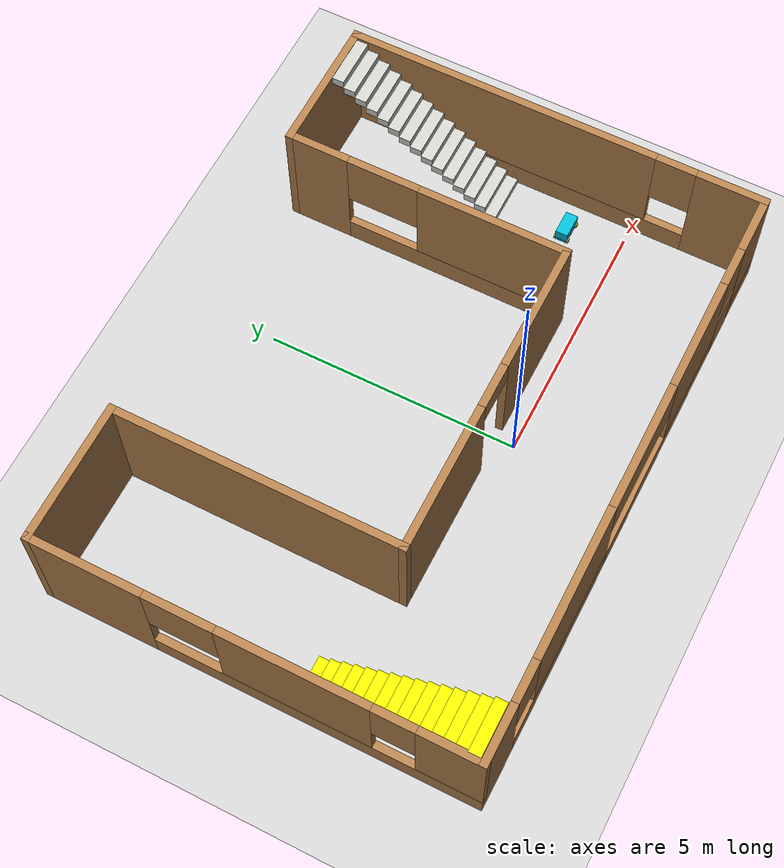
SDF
<sdf version="1.6">
 <world name="default">
  <model name="ground_plane">
   <static>1</static>
   <link name="link">
    <collision name="collision">
     <geometry><plane><normal>0 0 1</normal><size>100 100</size></plane></geometry>
     <surface><friction><ode><mu>100</mu><mu2>50</mu2></ode></friction></surface>
    </collision>
    <visual name="visual">
     <cast_shadows>0</cast_shadows>
     <geometry><plane><normal>0 0 1</normal><size>100 100</size></plane></geometry>
     <material>
      <script><uri>file://media/materials/scripts/gazebo.material</uri><name>Gazebo/Grey</name></script>
     </material>
    </visual>
   </link>
  </model>
  <model name="building0">
   <pose>-0.424502 1.82994 0 0 -0 0</pose>
   <link name="Stairs_0">
    <visual name="Stairs_0_Visual_0">
     <pose>5.18201 0.711332 0.083333 0 -0 -3.14159</pose>
     <geometry><box><size>1 0.233333 0.166667</size></box></geometry>
     <material>
      <script><uri>file://media/materials/scripts/gazebo.material</uri><name>Gazebo/CeilingTiled</name></script>
      <ambient>1 0 1 1</ambient>
     </material>
     <meta><layer>0</layer></meta>
    </visual>
    <collision name="Stairs_0_Collision_0">
     <geometry><box><size>1 0.233333 0.166667</size></box></geometry>
     <pose>5.18201 0.711332 0.083333 0 -0 -3.14159</pose>
    </collision>
    <visual name="Stairs_0_Visual_1">
     <pose>5.18201 0.944665 0.25 0 -0 -3.14159</pose>
     <geometry><box><size>1 0.233333 0.166667</size></box></geometry>
     <material>
      <script><uri>file://media/materials/scripts/gazebo.material</uri><name>Gazebo/CeilingTiled</name></script>
      <ambient>1 0 1 1</ambient>
     </material>
     <meta><layer>0</layer></meta>
    </visual>
    <collision name="Stairs_0_Collision_1">
     <geometry><box><size>1 0.233333 0.166667</size></box></geometry>
     <pose>5.18201 0.944665 0.25 0 -0 -3.14159</pose>
    </collision>
    <visual name="Stairs_0_Visual_2">
     <pose>5.18201 1.178 0.416667 0 -0 -3.14159</pose>
     <geometry><box><size>1 0.233333 0.166667</size></box></geometry>
     <material>
      <script><uri>file://media/materials/scripts/gazebo.material</uri><name>Gazebo/CeilingTiled</name></script>
      <ambient>1 0 1 1</ambient>
     </material>
     <meta><layer>0</layer></meta>
    </visual>
    <collision name="Stairs_0_Collision_2">
     <geometry><box><size>1 0.233333 0.166667</size></box></geometry>
     <pose>5.18201 1.178 0.416667 0 -0 -3.14159</pose>
    </collision>
    <visual name="Stairs_0_Visual_3">
     <pose>5.18201 1.41133 0.583333 0 -0 -3.14159</pose>
     <geometry><box><size>1 0.233333 0.166667</size></box></geometry>
     <material>
      <script><uri>file://media/materials/scripts/gazebo.material</uri><name>Gazebo/CeilingTiled</name></script>
      <ambient>1 0 1 1</ambient>
     </material>
     <meta><layer>0</layer></meta>
    </visual>
    <collision name="Stairs_0_Collision_3">
     <geometry><box><size>1 0.233333 0.166667</size></box></geometry>
     <pose>5.18201 1.41133 0.583333 0 -0 -3.14159</pose>
    </collision>
    <visual name="Stairs_0_Visual_4">
     <pose>5.18201 1.64467 0.75 0 -0 -3.14159</pose>
     <geometry><box><size>1 0.233333 0.166667</size></box></geometry>
     <material>
      <script><uri>file://media/materials/scripts/gazebo.material</uri><name>Gazebo/CeilingTiled</name></script>
      <ambient>1 0 1 1</ambient>
     </material>
     <meta><layer>0</layer></meta>
    </visual>
    <collision name="Stairs_0_Collision_4">
     <geometry><box><size>1 0.233333 0.166667</size></box></geometry>
     <pose>5.18201 1.64467 0.75 0 -0 -3.14159</pose>
    </collision>
    <visual name="Stairs_0_Visual_5">
     <pose>5.18201 1.878 0.916667 0 -0 -3.14159</pose>
     <geometry><box><size>1 0.233333 0.166667</size></box></geometry>
     <material>
      <script><uri>file://media/materials/scripts/gazebo.material</uri><name>Gazebo/CeilingTiled</name></script>
      <ambient>1 0 1 1</ambient>
     </material>
     <meta><layer>0</layer></meta>
    </visual>
    <collision name="Stairs_0_Collision_5">
     <geometry><box><size>1 0.233333 0.166667</size></box></geometry>
     <pose>5.18201 1.878 0.916667 0 -0 -3.14159</pose>
    </collision>
    <visual name="Stairs_0_Visual_6">
     <pose>5.18201 2.11133 1.08333 0 -0 -3.14159</pose>
     <geometry><box><size>1 0.233333 0.166667</size></box></geometry>
     <material>
      <script><uri>file://media/materials/scripts/gazebo.material</uri><name>Gazebo/CeilingTiled</name></script>
      <ambient>1 0 1 1</ambient>
     </material>
     <meta><layer>0</layer></meta>
    </visual>
    <collision name="Stairs_0_Collision_6">
     <geometry><box><size>1 0.233333 0.166667</size></box></geometry>
     <pose>5.18201 2.11133 1.08333 0 -0 -3.14159</pose>
    </collision>
    <visual name="Stairs_0_Visual_7">
     <pose>5.18201 2.34466 1.25 0 -0 -3.14159</pose>
     <geometry><box><size>1 0.233333 0.166667</size></box></geometry>
     <material>
      <script><uri>file://media/materials/scripts/gazebo.material</uri><name>Gazebo/CeilingTiled</name></script>
      <ambient>1 0 1 1</ambient>
     </material>
     <meta><layer>0</layer></meta>
    </visual>
    <collision name="Stairs_0_Collision_7">
     <geometry><box><size>1 0.233333 0.166667</size></box></geometry>
     <pose>5.18201 2.34466 1.25 0 -0 -3.14159</pose>
    </collision>
    <visual name="Stairs_0_Visual_8">
     <pose>5.18201 2.578 1.41667 0 -0 -3.14159</pose>
     <geometry><box><size>1 0.233333 0.166667</size></box></geometry>
     <material>
      <script><uri>file://media/materials/scripts/gazebo.material</uri><name>Gazebo/CeilingTiled</name></script>
      <ambient>1 0 1 1</ambient>
     </material>
     <meta><layer>0</layer></meta>
    </visual>
    <collision name="Stairs_0_Collision_8">
     <geometry><box><size>1 0.233333 0.166667</size></box></geometry>
     <pose>5.18201 2.578 1.41667 0 -0 -3.14159</pose>
    </collision>
    <visual name="Stairs_0_Visual_9">
     <pose>5.18201 2.81133 1.58333 0 -0 -3.14159</pose>
     <geometry><box><size>1 0.233333 0.166667</size></box></geometry>
     <material>
      <script><uri>file://media/materials/scripts/gazebo.material</uri><name>Gazebo/CeilingTiled</name></script>
      <ambient>1 0 1 1</ambient>
     </material>
     <meta><layer>0</layer></meta>
    </visual>
    <collision name="Stairs_0_Collision_9">
     <geometry><box><size>1 0.233333 0.166667</size></box></geometry>
     <pose>5.18201 2.81133 1.58333 0 -0 -3.14159</pose>
    </collision>
    <visual name="Stairs_0_Visual_10">
     <pose>5.18201 3.04467 1.75 0 -0 -3.14159</pose>
     <geometry><box><size>1 0.233333 0.166667</size></box></geometry>
     <material>
      <script><uri>file://media/materials/scripts/gazebo.material</uri><name>Gazebo/CeilingTiled</name></script>
      <ambient>1 0 1 1</ambient>
     </material>
     <meta><layer>0</layer></meta>
    </visual>
    <collision name="Stairs_0_Collision_10">
     <geometry><box><size>1 0.233333 0.166667</size></box></geometry>
     <pose>5.18201 3.04467 1.75 0 -0 -3.14159</pose>
    </collision>
    <visual name="Stairs_0_Visual_11">
     <pose>5.18201 3.278 1.91667 0 -0 -3.14159</pose>
     <geometry><box><size>1 0.233333 0.166667</size></box></geometry>
     <material>
      <script><uri>file://media/materials/scripts/gazebo.material</uri><name>Gazebo/CeilingTiled</name></script>
      <ambient>1 0 1 1</ambient>
     </material>
     <meta><layer>0</layer></meta>
    </visual>
    <collision name="Stairs_0_Collision_11">
     <geometry><box><size>1 0.233333 0.166667</size></box></geometry>
     <pose>5.18201 3.278 1.91667 0 -0 -3.14159</pose>
    </collision>
    <visual name="Stairs_0_Visual_12">
     <pose>5.18201 3.51133 2.08333 0 -0 -3.14159</pose>
     <geometry><box><size>1 0.233333 0.166667</size></box></geometry>
     <material>
      <script><uri>file://media/materials/scripts/gazebo.material</uri><name>Gazebo/CeilingTiled</name></script>
      <ambient>1 0 1 1</ambient>
     </material>
     <meta><layer>0</layer></meta>
    </visual>
    <collision name="Stairs_0_Collision_12">
     <geometry><box><size>1 0.233333 0.166667</size></box></geometry>
     <pose>5.18201 3.51133 2.08333 0 -0 -3.14159</pose>
    </collision>
    <visual name="Stairs_0_Visual_13">
     <pose>5.18201 3.74466 2.25 0 -0 -3.14159</pose>
     <geometry><box><size>1 0.233333 0.166667</size></box></geometry>
     <material>
      <script><uri>file://media/materials/scripts/gazebo.material</uri><name>Gazebo/CeilingTiled</name></script>
      <ambient>1 0 1 1</ambient>
     </material>
     <meta><layer>0</layer></meta>
    </visual>
    <collision name="Stairs_0_Collision_13">
     <geometry><box><size>1 0.233333 0.166667</size></box></geometry>
     <pose>5.18201 3.74466 2.25 0 -0 -3.14159</pose>
    </collision>
    <visual name="Stairs_0_Visual_14">
     <pose>5.18201 3.978 2.41667 0 -0 -3.14159</pose>
     <geometry><box><size>1 0.233333 0.166667</size></box></geometry>
     <material>
      <script><uri>file://media/materials/scripts/gazebo.material</uri><name>Gazebo/CeilingTiled</name></script>
      <ambient>1 0 1 1</ambient>
     </material>
     <meta><layer>0</layer></meta>
    </visual>
    <collision name="Stairs_0_Collision_14">
     <geometry><box><size>1 0.233333 0.166667</size></box></geometry>
     <pose>5.18201 3.978 2.41667 0 -0 -3.14159</pose>
    </collision>
   </link>
   <link name="Stairs_1">
    <visual name="Stairs_1_Visual_0">
     <pose>-5.25693 -0.708464 0.083333 0 -0 0</pose>
     <geometry><box><size>1 0.233333 0.166667</size></box></geometry>
     <material>
      <script><uri>file://media/materials/scripts/gazebo.material</uri><name>Gazebo/Grey</name></script>
      <ambient>1 1 0 1</ambient>
     </material>
     <meta><layer>0</layer></meta>
    </visual>
    <collision name="Stairs_1_Collision_0">
     <geometry><box><size>1 0.233333 0.166667</size></box></geometry>
     <pose>-5.25693 -0.708464 0.083333 0 -0 0</pose>
    </collision>
    <visual name="Stairs_1_Visual_1">
     <pose>-5.25693 -0.941797 0.25 0 -0 0</pose>
     <geometry><box><size>1 0.233333 0.166667</size></box></geometry>
     <material>
      <script><uri>file://media/materials/scripts/gazebo.material</uri><name>Gazebo/Grey</name></script>
      <ambient>1 1 0 1</ambient>
     </material>
     <meta><layer>0</layer></meta>
    </visual>
    <collision name="Stairs_1_Collision_1">
     <geometry><box><size>1 0.233333 0.166667</size></box></geometry>
     <pose>-5.25693 -0.941797 0.25 0 -0 0</pose>
    </collision>
    <visual name="Stairs_1_Visual_2">
     <pose>-5.25693 -1.17513 0.416667 0 -0 0</pose>
     <geometry><box><size>1 0.233333 0.166667</size></box></geometry>
     <material>
      <script><uri>file://media/materials/scripts/gazebo.material</uri><name>Gazebo/Grey</name></script>
      <ambient>1 1 0 1</ambient>
     </material>
     <meta><layer>0</layer></meta>
    </visual>
    <collision name="Stairs_1_Collision_2">
     <geometry><box><size>1 0.233333 0.166667</size></box></geometry>
     <pose>-5.25693 -1.17513 0.416667 0 -0 0</pose>
    </collision>
    <visual name="Stairs_1_Visual_3">
     <pose>-5.25693 -1.40846 0.583333 0 -0 0</pose>
     <geometry><box><size>1 0.233333 0.166667</size></box></geometry>
     <material>
      <script><uri>file://media/materials/scripts/gazebo.material</uri><name>Gazebo/Grey</name></script>
      <ambient>1 1 0 1</ambient>
     </material>
     <meta><layer>0</layer></meta>
    </visual>
    <collision name="Stairs_1_Collision_3">
     <geometry><box><size>1 0.233333 0.166667</size></box></geometry>
     <pose>-5.25693 -1.40846 0.583333 0 -0 0</pose>
    </collision>
    <visual name="Stairs_1_Visual_4">
     <pose>-5.25693 -1.6418 0.75 0 -0 0</pose>
     <geometry><box><size>1 0.233333 0.166667</size></box></geometry>
     <material>
      <script><uri>file://media/materials/scripts/gazebo.material</uri><name>Gazebo/Grey</name></script>
      <ambient>1 1 0 1</ambient>
     </material>
     <meta><layer>0</layer></meta>
    </visual>
    <collision name="Stairs_1_Collision_4">
     <geometry><box><size>1 0.233333 0.166667</size></box></geometry>
     <pose>-5.25693 -1.6418 0.75 0 -0 0</pose>
    </collision>
    <visual name="Stairs_1_Visual_5">
     <pose>-5.25693 -1.87513 0.916667 0 -0 0</pose>
     <geometry><box><size>1 0.233333 0.166667</size></box></geometry>
     <material>
      <script><uri>file://media/materials/scripts/gazebo.material</uri><name>Gazebo/Grey</name></script>
      <ambient>1 1 0 1</ambient>
     </material>
     <meta><layer>0</layer></meta>
    </visual>
    <collision name="Stairs_1_Collision_5">
     <geometry><box><size>1 0.233333 0.166667</size></box></geometry>
     <pose>-5.25693 -1.87513 0.916667 0 -0 0</pose>
    </collision>
    <visual name="Stairs_1_Visual_6">
     <pose>-5.25693 -2.10846 1.08333 0 -0 0</pose>
     <geometry><box><size>1 0.233333 0.166667</size></box></geometry>
     <material>
      <script><uri>file://media/materials/scripts/gazebo.material</uri><name>Gazebo/Grey</name></script>
      <ambient>1 1 0 1</ambient>
     </material>
     <meta><layer>0</layer></meta>
    </visual>
    <collision name="Stairs_1_Collision_6">
     <geometry><box><size>1 0.233333 0.166667</size></box></geometry>
     <pose>-5.25693 -2.10846 1.08333 0 -0 0</pose>
    </collision>
    <visual name="Stairs_1_Visual_7">
     <pose>-5.25693 -2.3418 1.25 0 -0 0</pose>
     <geometry><box><size>1 0.233333 0.166667</size></box></geometry>
     <material>
      <script><uri>file://media/materials/scripts/gazebo.material</uri><name>Gazebo/Grey</name></script>
      <ambient>1 1 0 1</ambient>
     </material>
     <meta><layer>0</layer></meta>
    </visual>
    <collision name="Stairs_1_Collision_7">
     <geometry><box><size>1 0.233333 0.166667</size></box></geometry>
     <pose>-5.25693 -2.3418 1.25 0 -0 0</pose>
    </collision>
    <visual name="Stairs_1_Visual_8">
     <pose>-5.25693 -2.57513 1.41667 0 -0 0</pose>
     <geometry><box><size>1 0.233333 0.166667</size></box></geometry>
     <material>
      <script><uri>file://media/materials/scripts/gazebo.material</uri><name>Gazebo/Grey</name></script>
      <ambient>1 1 0 1</ambient>
     </material>
     <meta><layer>0</layer></meta>
    </visual>
    <collision name="Stairs_1_Collision_8">
     <geometry><box><size>1 0.233333 0.166667</size></box></geometry>
     <pose>-5.25693 -2.57513 1.41667 0 -0 0</pose>
    </collision>
    <visual name="Stairs_1_Visual_9">
     <pose>-5.25693 -2.80846 1.58333 0 -0 0</pose>
     <geometry><box><size>1 0.233333 0.166667</size></box></geometry>
     <material>
      <script><uri>file://media/materials/scripts/gazebo.material</uri><name>Gazebo/Grey</name></script>
      <ambient>1 1 0 1</ambient>
     </material>
     <meta><layer>0</layer></meta>
    </visual>
    <collision name="Stairs_1_Collision_9">
     <geometry><box><size>1 0.233333 0.166667</size></box></geometry>
     <pose>-5.25693 -2.80846 1.58333 0 -0 0</pose>
    </collision>
    <visual name="Stairs_1_Visual_10">
     <pose>-5.25693 -3.0418 1.75 0 -0 0</pose>
     <geometry><box><size>1 0.233333 0.166667</size></box></geometry>
     <material>
      <script><uri>file://media/materials/scripts/gazebo.material</uri><name>Gazebo/Grey</name></script>
      <ambient>1 1 0 1</ambient>
     </material>
     <meta><layer>0</layer></meta>
    </visual>
    <collision name="Stairs_1_Collision_10">
     <geometry><box><size>1 0.233333 0.166667</size></box></geometry>
     <pose>-5.25693 -3.0418 1.75 0 -0 0</pose>
    </collision>
    <visual name="Stairs_1_Visual_11">
     <pose>-5.25693 -3.27513 1.91667 0 -0 0</pose>
     <geometry><box><size>1 0.233333 0.166667</size></box></geometry>
     <material>
      <script><uri>file://media/materials/scripts/gazebo.material</uri><name>Gazebo/Grey</name></script>
      <ambient>1 1 0 1</ambient>
     </material>
     <meta><layer>0</layer></meta>
    </visual>
    <collision name="Stairs_1_Collision_11">
     <geometry><box><size>1 0.233333 0.166667</size></box></geometry>
     <pose>-5.25693 -3.27513 1.91667 0 -0 0</pose>
    </collision>
    <visual name="Stairs_1_Visual_12">
     <pose>-5.25693 -3.50846 2.08333 0 -0 0</pose>
     <geometry><box><size>1 0.233333 0.166667</size></box></geometry>
     <material>
      <script><uri>file://media/materials/scripts/gazebo.material</uri><name>Gazebo/Grey</name></script>
      <ambient>1 1 0 1</ambient>
     </material>
     <meta><layer>0</layer></meta>
    </visual>
    <collision name="Stairs_1_Collision_12">
     <geometry><box><size>1 0.233333 0.166667</size></box></geometry>
     <pose>-5.25693 -3.50846 2.08333 0 -0 0</pose>
    </collision>
    <visual name="Stairs_1_Visual_13">
     <pose>-5.25693 -3.7418 2.25 0 -0 0</pose>
     <geometry><box><size>1 0.233333 0.166667</size></box></geometry>
     <material>
      <script><uri>file://media/materials/scripts/gazebo.material</uri><name>Gazebo/Grey</name></script>
      <ambient>1 1 0 1</ambient>
     </material>
     <meta><layer>0</layer></meta>
    </visual>
    <collision name="Stairs_1_Collision_13">
     <geometry><box><size>1 0.233333 0.166667</size></box></geometry>
     <pose>-5.25693 -3.7418 2.25 0 -0 0</pose>
    </collision>
    <visual name="Stairs_1_Visual_14">
     <pose>-5.25693 -3.97513 2.41667 0 -0 0</pose>
     <geometry><box><size>1 0.233333 0.166667</size></box></geometry>
     <material>
      <script><uri>file://media/materials/scripts/gazebo.material</uri><name>Gazebo/Grey</name></script>
      <ambient>1 1 0 1</ambient>
     </material>
     <meta><layer>0</layer></meta>
    </visual>
    <collision name="Stairs_1_Collision_14">
     <geometry><box><size>1 0.233333 0.166667</size></box></geometry>
     <pose>-5.25693 -3.97513 2.41667 0 -0 0</pose>
    </collision>
   </link>
   <link name="Wall_29">
    <pose>-5.8 0 0 0 0 -1.5708</pose>
    <visual name="Wall_29_Visual_0">
     <pose>-3.11517 0 1.25 0 -0 0</pose>
     <geometry><box><size>2.26965 0.15 2.5</size></box></geometry>
     <material>
      <script><uri>file://media/materials/scripts/gazebo.material</uri><name>Gazebo/Wood</name></script>
      <ambient>1 0.764706 0.305882 1</ambient>
     </material>
     <meta><layer>0</layer></meta>
    </visual>
    <collision name="Wall_29_Collision_0">
     <geometry><box><size>2.26965 0.15 2.5</size></box></geometry>
     <pose>-3.11517 0 1.25 0 -0 0</pose>
    </collision>
    <visual name="Wall_29_Visual_1">
     <pose>1.13482 0 0.25 0 -0 0</pose>
     <geometry><box><size>6.23035 0.15 0.5</size></box></geometry>
     <material>
      <script><uri>file://media/materials/scripts/gazebo.material</uri><name>Gazebo/Wood</name></script>
      <ambient>1 0.764706 0.305882 1</ambient>
     </material>
     <meta><layer>0</layer></meta>
    </visual>
    <collision name="Wall_29_Collision_1">
     <geometry><box><size>6.23035 0.15 0.5</size></box></geometry>
     <pose>1.13482 0 0.25 0 -0 0</pose>
    </collision>
    <visual name="Wall_29_Visual_2">
     <pose>0.782995 0 1.5 0 -0 0</pose>
     <geometry><box><size>2.84056 0.15 2</size></box></geometry>
     <material>
      <script><uri>file://media/materials/scripts/gazebo.material</uri><name>Gazebo/Wood</name></script>
      <ambient>1 0.764706 0.305882 1</ambient>
     </material>
     <meta><layer>0</layer></meta>
    </visual>
    <collision name="Wall_29_Collision_2">
     <geometry><box><size>2.84056 0.15 2</size></box></geometry>
     <pose>0.782995 0 1.5 0 -0 0</pose>
    </collision>
    <visual name="Wall_29_Visual_3">
     <pose>3.62664 0 1.5 0 -0 0</pose>
     <geometry><box><size>1.24673 0.15 2</size></box></geometry>
     <material>
      <script><uri>file://media/materials/scripts/gazebo.material</uri><name>Gazebo/Wood</name></script>
      <ambient>1 0.764706 0.305882 1</ambient>
     </material>
     <meta><layer>0</layer></meta>
    </visual>
    <collision name="Wall_29_Collision_3">
     <geometry><box><size>1.24673 0.15 2</size></box></geometry>
     <pose>3.62664 0 1.5 0 -0 0</pose>
    </collision>
    <visual name="Wall_29_Visual_4">
     <pose>-1.30882 0 1.9 0 -0 0</pose>
     <geometry><box><size>1.34307 0.15 1.2</size></box></geometry>
     <material>
      <script><uri>file://media/materials/scripts/gazebo.material</uri><name>Gazebo/Wood</name></script>
      <ambient>1 0.764706 0.305882 1</ambient>
     </material>
     <meta><layer>0</layer></meta>
    </visual>
    <collision name="Wall_29_Collision_4">
     <geometry><box><size>1.34307 0.15 1.2</size></box></geometry>
     <pose>-1.30882 0 1.9 0 -0 0</pose>
    </collision>
    <visual name="Wall_29_Visual_5">
     <pose>2.60327 0 1.9 0 -0 0</pose>
     <geometry><box><size>0.8 0.15 1.2</size></box></geometry>
     <material>
      <script><uri>file://media/materials/scripts/gazebo.material</uri><name>Gazebo/Wood</name></script>
      <ambient>1 0.764706 0.305882 1</ambient>
     </material>
     <meta><layer>0</layer></meta>
    </visual>
    <collision name="Wall_29_Collision_5">
     <geometry><box><size>0.8 0.15 1.2</size></box></geometry>
     <pose>2.60327 0 1.9 0 -0 0</pose>
    </collision>
   </link>
   <link name="Wall_30">
    <pose>0 -4.175 0 0 -0 0</pose>
    <visual name="Wall_30_Visual_0">
     <pose>-5.2933 0 1.25 0 -0 0</pose>
     <geometry><box><size>1.1634 0.15 2.5</size></box></geometry>
     <material>
      <script><uri>file://media/materials/scripts/gazebo.material</uri><name>Gazebo/Wood</name></script>
      <ambient>1 0.764706 0.305882 1</ambient>
     </material>
     <meta><layer>0</layer></meta>
    </visual>
    <collision name="Wall_30_Collision_0">
     <geometry><box><size>1.1634 0.15 2.5</size></box></geometry>
     <pose>-5.2933 0 1.25 0 -0 0</pose>
    </collision>
    <visual name="Wall_30_Visual_1">
     <pose>-2.83101 0 0.25 0 -0 0</pose>
     <geometry><box><size>3.76118 0.15 0.5</size></box></geometry>
     <material>
      <script><uri>file://media/materials/scripts/gazebo.material</uri><name>Gazebo/Wood</name></script>
      <ambient>1 0.764706 0.305882 1</ambient>
     </material>
     <meta><layer>0</layer></meta>
    </visual>
    <collision name="Wall_30_Collision_1">
     <geometry><box><size>3.76118 0.15 0.5</size></box></geometry>
     <pose>-2.83101 0 0.25 0 -0 0</pose>
    </collision>
    <visual name="Wall_30_Visual_2">
     <pose>2.46229 0 0.25 0 -0 0</pose>
     <geometry><box><size>6.82542 0.15 0.5</size></box></geometry>
     <material>
      <script><uri>file://media/materials/scripts/gazebo.material</uri><name>Gazebo/Wood</name></script>
      <ambient>1 0.764706 0.305882 1</ambient>
     </material>
     <meta><layer>0</layer></meta>
    </visual>
    <collision name="Wall_30_Collision_2">
     <geometry><box><size>6.82542 0.15 0.5</size></box></geometry>
     <pose>2.46229 0 0.25 0 -0 0</pose>
    </collision>
    <visual name="Wall_30_Visual_3">
     <pose>2.72818 0 1.5 0 -0 0</pose>
     <geometry><box><size>2.2572 0.15 2</size></box></geometry>
     <material>
      <script><uri>file://media/materials/scripts/gazebo.material</uri><name>Gazebo/Wood</name></script>
      <ambient>1 0.764706 0.305882 1</ambient>
     </material>
     <meta><layer>0</layer></meta>
    </visual>
    <collision name="Wall_30_Collision_3">
     <geometry><box><size>2.2572 0.15 2</size></box></geometry>
     <pose>2.72818 0 1.5 0 -0 0</pose>
    </collision>
    <visual name="Wall_30_Visual_4">
     <pose>5.26589 0 1.5 0 -0 0</pose>
     <geometry><box><size>1.21821 0.15 2</size></box></geometry>
     <material>
      <script><uri>file://media/materials/scripts/gazebo.material</uri><name>Gazebo/Wood</name></script>
      <ambient>1 0.764706 0.305882 1</ambient>
     </material>
     <meta><layer>0</layer></meta>
    </visual>
    <collision name="Wall_30_Collision_4">
     <geometry><box><size>1.21821 0.15 2</size></box></geometry>
     <pose>5.26589 0 1.5 0 -0 0</pose>
    </collision>
    <visual name="Wall_30_Visual_5">
     <pose>4.25679 0 0.5 0 -0 0</pose>
     <geometry><box><size>0.8 0.15 1.2</size></box></geometry>
     <material>
      <script><uri>file://media/materials/scripts/gazebo.material</uri><name>Gazebo/Wood</name></script>
      <ambient>1 0.764706 0.305882 1</ambient>
     </material>
     <meta><layer>0</layer></meta>
    </visual>
    <collision name="Wall_30_Collision_5">
     <geometry><box><size>0.8 0.15 1.2</size></box></geometry>
     <pose>4.25679 0 0.5 0 -0 0</pose>
    </collision>
    <visual name="Wall_30_Visual_6">
     <pose>-2.43101 0 1.5 0 -0 0</pose>
     <geometry><box><size>2.96118 0.15 2</size></box></geometry>
     <material>
      <script><uri>file://media/materials/scripts/gazebo.material</uri><name>Gazebo/Wood</name></script>
      <ambient>1 0.764706 0.305882 1</ambient>
     </material>
     <meta><layer>0</layer></meta>
    </visual>
    <collision name="Wall_30_Collision_6">
     <geometry><box><size>2.96118 0.15 2</size></box></geometry>
     <pose>-2.43101 0 1.5 0 -0 0</pose>
    </collision>
    <visual name="Wall_30_Visual_7">
     <pose>-2.43101 0 1.5 0 -0 0</pose>
     <geometry><box><size>2.96118 0.15 2</size></box></geometry>
     <material>
      <script><uri>file://media/materials/scripts/gazebo.material</uri><name>Gazebo/Wood</name></script>
      <ambient>1 0.764706 0.305882 1</ambient>
     </material>
     <meta><layer>0</layer></meta>
    </visual>
    <collision name="Wall_30_Collision_7">
     <geometry><box><size>2.96118 0.15 2</size></box></geometry>
     <pose>-2.43101 0 1.5 0 -0 0</pose>
    </collision>
    <visual name="Wall_30_Visual_8">
     <pose>-4.3116 0 1.9 0 -0 0</pose>
     <geometry><box><size>0.8 0.15 1.2</size></box></geometry>
     <material>
      <script><uri>file://media/materials/scripts/gazebo.material</uri><name>Gazebo/Wood</name></script>
      <ambient>1 0.764706 0.305882 1</ambient>
     </material>
     <meta><layer>0</layer></meta>
    </visual>
    <collision name="Wall_30_Collision_8">
     <geometry><box><size>0.8 0.15 1.2</size></box></geometry>
     <pose>-4.3116 0 1.9 0 -0 0</pose>
    </collision>
    <visual name="Wall_30_Visual_9">
     <pose>4.25679 0 1.9 0 -0 0</pose>
     <geometry><box><size>0.8 0.15 1.2</size></box></geometry>
     <material>
      <script><uri>file://media/materials/scripts/gazebo.material</uri><name>Gazebo/Wood</name></script>
      <ambient>1 0.764706 0.305882 1</ambient>
     </material>
     <meta><layer>0</layer></meta>
    </visual>
    <collision name="Wall_30_Collision_9">
     <geometry><box><size>0.8 0.15 1.2</size></box></geometry>
     <pose>4.25679 0 1.9 0 -0 0</pose>
    </collision>
    <visual name="Wall_30_Visual_10">
     <pose>0.324583 0 2 0 -0 0</pose>
     <geometry><box><size>2.55 0.15 1</size></box></geometry>
     <material>
      <script><uri>file://media/materials/scripts/gazebo.material</uri><name>Gazebo/Wood</name></script>
      <ambient>1 0.764706 0.305882 1</ambient>
     </material>
     <meta><layer>0</layer></meta>
    </visual>
    <collision name="Wall_30_Collision_10">
     <geometry><box><size>2.55 0.15 1</size></box></geometry>
     <pose>0.324583 0 2 0 -0 0</pose>
    </collision>
    <visual name="Wall_30_Visual_11">
     <pose>0.324583 0 2 0 -0 0</pose>
     <geometry><box><size>2.55 0.15 1</size></box></geometry>
     <material>
      <script><uri>file://media/materials/scripts/gazebo.material</uri><name>Gazebo/Wood</name></script>
      <ambient>1 0.764706 0.305882 1</ambient>
     </material>
     <meta><layer>0</layer></meta>
    </visual>
    <collision name="Wall_30_Collision_11">
     <geometry><box><size>2.55 0.15 1</size></box></geometry>
     <pose>0.324583 0 2 0 -0 0</pose>
    </collision>
   </link>
   <link name="Wall_31">
    <pose>5.8 0 0 0 -0 1.5708</pose>
    <visual name="Wall_31_Visual_0">
     <pose>-3.54618 0 1.25 0 -0 0</pose>
     <geometry><box><size>1.40763 0.15 2.5</size></box></geometry>
     <material>
      <script><uri>file://media/materials/scripts/gazebo.material</uri><name>Gazebo/Wood</name></script>
      <ambient>1 0.764706 0.305882 1</ambient>
     </material>
     <meta><layer>0</layer></meta>
    </visual>
    <collision name="Wall_31_Collision_0">
     <geometry><box><size>1.40763 0.15 2.5</size></box></geometry>
     <pose>-3.54618 0 1.25 0 -0 0</pose>
    </collision>
    <visual name="Wall_31_Visual_1">
     <pose>0.703818 0 0.25 0 -0 0</pose>
     <geometry><box><size>7.09237 0.15 0.5</size></box></geometry>
     <material>
      <script><uri>file://media/materials/scripts/gazebo.material</uri><name>Gazebo/Wood</name></script>
      <ambient>1 0.764706 0.305882 1</ambient>
     </material>
     <meta><layer>0</layer></meta>
    </visual>
    <collision name="Wall_31_Collision_1">
     <geometry><box><size>7.09237 0.15 0.5</size></box></geometry>
     <pose>0.703818 0 0.25 0 -0 0</pose>
    </collision>
    <visual name="Wall_31_Visual_2">
     <pose>1.10382 0 1.5 0 -0 0</pose>
     <geometry><box><size>6.29237 0.15 2</size></box></geometry>
     <material>
      <script><uri>file://media/materials/scripts/gazebo.material</uri><name>Gazebo/Wood</name></script>
      <ambient>1 0.764706 0.305882 1</ambient>
     </material>
     <meta><layer>0</layer></meta>
    </visual>
    <collision name="Wall_31_Collision_2">
     <geometry><box><size>6.29237 0.15 2</size></box></geometry>
     <pose>1.10382 0 1.5 0 -0 0</pose>
    </collision>
    <visual name="Wall_31_Visual_3">
     <pose>-2.44237 0 1.9 0 -0 0</pose>
     <geometry><box><size>0.8 0.15 1.2</size></box></geometry>
     <material>
      <script><uri>file://media/materials/scripts/gazebo.material</uri><name>Gazebo/Wood</name></script>
      <ambient>1 0.764706 0.305882 1</ambient>
     </material>
     <meta><layer>0</layer></meta>
    </visual>
    <collision name="Wall_31_Collision_3">
     <geometry><box><size>0.8 0.15 1.2</size></box></geometry>
     <pose>-2.44237 0 1.9 0 -0 0</pose>
    </collision>
   </link>
   <link name="Wall_32">
    <collision name="Wall_32_Collision">
     <geometry><box><size>2.75 0.15 2.5</size></box></geometry>
     <pose>0 0 1.25 0 -0 0</pose>
    </collision>
    <visual name="Wall_32_Visual">
     <pose>0 0 1.25 0 -0 0</pose>
     <geometry><box><size>2.75 0.15 2.5</size></box></geometry>
     <material>
      <script><uri>file://media/materials/scripts/gazebo.material</uri><name>Gazebo/Wood</name></script>
      <ambient>1 0.764706 0.305882 1</ambient>
     </material>
     <meta><layer>0</layer></meta>
    </visual>
    <pose>4.5 4.175 0 0 -0 3.14159</pose>
   </link>
   <link name="Wall_33">
    <pose>3.2 1.375 0 0 0 -1.5708</pose>
    <visual name="Wall_33_Visual_0">
     <pose>-2.23296 0 1.25 0 -0 0</pose>
     <geometry><box><size>1.28409 0.15 2.5</size></box></geometry>
     <material>
      <script><uri>file://media/materials/scripts/gazebo.material</uri><name>Gazebo/Wood</name></script>
      <ambient>1 0.764706 0.305882 1</ambient>
     </material>
     <meta><layer>0</layer></meta>
    </visual>
    <collision name="Wall_33_Collision_0">
     <geometry><box><size>1.28409 0.15 2.5</size></box></geometry>
     <pose>-2.23296 0 1.25 0 -0 0</pose>
    </collision>
    <visual name="Wall_33_Visual_1">
     <pose>0.642043 0 0.25 0 -0 0</pose>
     <geometry><box><size>4.46591 0.15 0.5</size></box></geometry>
     <material>
      <script><uri>file://media/materials/scripts/gazebo.material</uri><name>Gazebo/Wood</name></script>
      <ambient>1 0.764706 0.305882 1</ambient>
     </material>
     <meta><layer>0</layer></meta>
    </visual>
    <collision name="Wall_33_Collision_1">
     <geometry><box><size>4.46591 0.15 0.5</size></box></geometry>
     <pose>0.642043 0 0.25 0 -0 0</pose>
    </collision>
    <visual name="Wall_33_Visual_2">
     <pose>1.36386 0 1.5 0 -0 0</pose>
     <geometry><box><size>3.02228 0.15 2</size></box></geometry>
     <material>
      <script><uri>file://media/materials/scripts/gazebo.material</uri><name>Gazebo/Wood</name></script>
      <ambient>1 0.764706 0.305882 1</ambient>
     </material>
     <meta><layer>0</layer></meta>
    </visual>
    <collision name="Wall_33_Collision_2">
     <geometry><box><size>3.02228 0.15 2</size></box></geometry>
     <pose>1.36386 0 1.5 0 -0 0</pose>
    </collision>
    <visual name="Wall_33_Visual_3">
     <pose>-0.869097 0 1.9 0 -0 0</pose>
     <geometry><box><size>1.44363 0.15 1.2</size></box></geometry>
     <material>
      <script><uri>file://media/materials/scripts/gazebo.material</uri><name>Gazebo/Wood</name></script>
      <ambient>1 0.764706 0.305882 1</ambient>
     </material>
     <meta><layer>0</layer></meta>
    </visual>
    <collision name="Wall_33_Collision_3">
     <geometry><box><size>1.44363 0.15 1.2</size></box></geometry>
     <pose>-0.869097 0 1.9 0 -0 0</pose>
    </collision>
   </link>
   <link name="Wall_34">
    <pose>0.025 -1.425 0 0 -0 3.14159</pose>
    <visual name="Wall_34_Visual_0">
     <pose>-1.93442 0 1.25 0 -0 0</pose>
     <geometry><box><size>2.63116 0.15 2.5</size></box></geometry>
     <material>
      <script><uri>file://media/materials/scripts/gazebo.material</uri><name>Gazebo/Wood</name></script>
      <ambient>1 0.764706 0.305882 1</ambient>
     </material>
     <meta><layer>0</layer></meta>
    </visual>
    <collision name="Wall_34_Collision_0">
     <geometry><box><size>2.63116 0.15 2.5</size></box></geometry>
     <pose>-1.93442 0 1.25 0 -0 0</pose>
    </collision>
    <visual name="Wall_34_Visual_1">
     <pose>1.76558 0 1.25 0 -0 0</pose>
     <geometry><box><size>2.96884 0.15 2.5</size></box></geometry>
     <material>
      <script><uri>file://media/materials/scripts/gazebo.material</uri><name>Gazebo/Wood</name></script>
      <ambient>1 0.764706 0.305882 1</ambient>
     </material>
     <meta><layer>0</layer></meta>
    </visual>
    <collision name="Wall_34_Collision_1">
     <geometry><box><size>2.96884 0.15 2.5</size></box></geometry>
     <pose>1.76558 0 1.25 0 -0 0</pose>
    </collision>
    <visual name="Wall_34_Visual_2">
     <pose>-0.168844 0 2.25 0 -0 0</pose>
     <geometry><box><size>0.9 0.15 0.5</size></box></geometry>
     <material>
      <script><uri>file://media/materials/scripts/gazebo.material</uri><name>Gazebo/Wood</name></script>
      <ambient>1 0.764706 0.305882 1</ambient>
     </material>
     <meta><layer>0</layer></meta>
    </visual>
    <collision name="Wall_34_Collision_2">
     <geometry><box><size>0.9 0.15 0.5</size></box></geometry>
     <pose>-0.168844 0 2.25 0 -0 0</pose>
    </collision>
   </link>
   <link name="Wall_35">
    <collision name="Wall_35_Collision">
     <geometry><box><size>5.75 0.15 2.5</size></box></geometry>
     <pose>0 0 1.25 0 -0 0</pose>
    </collision>
    <visual name="Wall_35_Visual">
     <pose>0 0 1.25 0 -0 0</pose>
     <geometry><box><size>5.75 0.15 2.5</size></box></geometry>
     <material>
      <script><uri>file://media/materials/scripts/gazebo.material</uri><name>Gazebo/Wood</name></script>
      <ambient>1 0.764706 0.305882 1</ambient>
     </material>
     <meta><layer>0</layer></meta>
    </visual>
    <pose>-3.15 1.375 0 0 -0 1.5708</pose>
   </link>
   <link name="Wall_36">
    <collision name="Wall_36_Collision">
     <geometry><box><size>2.8 0.15 2.5</size></box></geometry>
     <pose>0 0 1.25 0 -0 0</pose>
    </collision>
    <visual name="Wall_36_Visual">
     <pose>0 0 1.25 0 -0 0</pose>
     <geometry><box><size>2.8 0.15 2.5</size></box></geometry>
     <material>
      <script><uri>file://media/materials/scripts/gazebo.material</uri><name>Gazebo/Wood</name></script>
      <ambient>1 0.764706 0.305882 1</ambient>
     </material>
     <meta><layer>0</layer></meta>
    </visual>
    <pose>-4.475 4.175 0 0 0 -3.14159</pose>
   </link>
   <static>1</static>
  </model>
  <model name="suv">
   <link name="link_0">
    <pose>0.2 0.139167 -0.029167 0 -0 0</pose>
    <inertial>
     <mass>1</mass>
     <inertia><ixx>0.145833</ixx><ixy>0</ixy><ixz>0</ixz><iyy>0.145833</iyy><iyz>0</iyz><izz>0.125</izz></inertia>
    </inertial>
    <visual name="visual">
     <pose>0 0 0.05 1.5707 -0 0</pose>
     <geometry><cylinder><radius>0.05</radius><length>0.025</length></cylinder></geometry>
     <material>
      <lighting>1</lighting>
      <script><uri>file://media/materials/scripts/gazebo.material</uri><name>Gazebo/Grey</name></script>
      <shader type="pixel"><normal_map>__default__</normal_map></shader>
      <ambient>0.831 0.686 0.216 1</ambient>
      <diffuse>0.831 0.686 0.216 1</diffuse>
      <specular>0.01 0.01 0.01 1</specular>
      <emissive>0 0 0 1</emissive>
     </material>
    </visual>
    <collision name="collision">
     <pose>0 0 0.05 1.5707 -0 0</pose>
     <geometry><cylinder><radius>0.05</radius><length>0.025</length></cylinder></geometry>
     <surface>
      <friction>
       <ode><mu>1</mu><mu2>1</mu2><fdir1>0 0 0</fdir1><slip1>0</slip1><slip2>0</slip2></ode>
       <torsional>
        <coefficient>1</coefficient>
        <patch_radius>0</patch_radius>
        <surface_radius>0</surface_radius>
        <use_patch_radius>1</use_patch_radius>
        <ode><slip>0</slip></ode>
       </torsional>
      </friction>
      <bounce><restitution_coefficient>0</restitution_coefficient><threshold>1e+06</threshold></bounce>
      <contact>
       <collide_without_contact>0</collide_without_contact>
       <collide_without_contact_bitmask>1</collide_without_contact_bitmask>
       <collide_bitmask>1</collide_bitmask>
       <ode>
        <soft_cfm>0</soft_cfm>
        <soft_erp>0.2</soft_erp>
        <kp>1e+13</kp>
        <kd>1</kd>
        <max_vel>0.01</max_vel>
        <min_depth>0</min_depth>
       </ode>
       <bullet>
        <split_impulse>1</split_impulse>
        <split_impulse_penetration_threshold>-0.01</split_impulse_penetration_threshold>
        <soft_cfm>0</soft_cfm>
        <soft_erp>0.2</soft_erp>
        <kp>1e+13</kp>
        <kd>1</kd>
       </bullet>
      </contact>
     </surface>
    </collision>
   </link>
   <link name="link_0_clone">
    <pose>-0.2 0.139167 -0.029167 0 -0 0</pose>
    <inertial>
     <mass>1</mass>
     <inertia><ixx>0.145833</ixx><ixy>0</ixy><ixz>0</ixz><iyy>0.145833</iyy><iyz>0</iyz><izz>0.125</izz></inertia>
    </inertial>
    <visual name="visual">
     <pose>0 0 0.05 1.5707 -0 0</pose>
     <geometry><cylinder><radius>0.05</radius><length>0.025</length></cylinder></geometry>
     <material>
      <lighting>1</lighting>
      <script><uri>file://media/materials/scripts/gazebo.material</uri><name>Gazebo/Grey</name></script>
      <shader type="pixel"><normal_map>__default__</normal_map></shader>
      <ambient>0.831 0.686 0.216 1</ambient>
      <diffuse>0.831 0.686 0.216 1</diffuse>
      <specular>0.01 0.01 0.01 1</specular>
      <emissive>0 0 0 1</emissive>
     </material>
    </visual>
    <collision name="collision">
     <pose>0 0 0.05 1.5707 -0 0</pose>
     <geometry><cylinder><radius>0.05</radius><length>0.025</length></cylinder></geometry>
     <surface>
      <friction>
       <ode><mu>1</mu><mu2>1</mu2><fdir1>0 0 0</fdir1><slip1>0</slip1><slip2>0</slip2></ode>
       <torsional>
        <coefficient>1</coefficient>
        <patch_radius>0</patch_radius>
        <surface_radius>0</surface_radius>
        <use_patch_radius>1</use_patch_radius>
        <ode><slip>0</slip></ode>
       </torsional>
      </friction>
      <bounce><restitution_coefficient>0</restitution_coefficient><threshold>1e+06</threshold></bounce>
      <contact>
       <collide_without_contact>0</collide_without_contact>
       <collide_without_contact_bitmask>1</collide_without_contact_bitmask>
       <collide_bitmask>1</collide_bitmask>
       <ode>
        <soft_cfm>0</soft_cfm>
        <soft_erp>0.2</soft_erp>
        <kp>1e+13</kp>
        <kd>1</kd>
        <max_vel>0.01</max_vel>
        <min_depth>0</min_depth>
       </ode>
       <bullet>
        <split_impulse>1</split_impulse>
        <split_impulse_penetration_threshold>-0.01</split_impulse_penetration_threshold>
        <soft_cfm>0</soft_cfm>
        <soft_erp>0.2</soft_erp>
        <kp>1e+13</kp>
        <kd>1</kd>
       </bullet>
      </contact>
     </surface>
    </collision>
   </link>
   <link name="link_0_clone_0">
    <pose>0.2 -0.138333 -0.029167 0 -0 0</pose>
    <inertial>
     <mass>1</mass>
     <inertia><ixx>0.145833</ixx><ixy>0</ixy><ixz>0</ixz><iyy>0.145833</iyy><iyz>0</iyz><izz>0.125</izz></inertia>
    </inertial>
    <visual name="visual">
     <pose>0 0 0.05 1.5707 -0 0</pose>
     <geometry><cylinder><radius>0.05</radius><length>0.025</length></cylinder></geometry>
     <material>
      <lighting>1</lighting>
      <script><uri>file://media/materials/scripts/gazebo.material</uri><name>Gazebo/Grey</name></script>
      <shader type="pixel"><normal_map>__default__</normal_map></shader>
      <ambient>0.831 0.686 0.216 1</ambient>
      <diffuse>0.831 0.686 0.216 1</diffuse>
      <specular>0.01 0.01 0.01 1</specular>
      <emissive>0 0 0 1</emissive>
     </material>
    </visual>
    <collision name="collision">
     <pose>0 0 0.05 1.5707 -0 0</pose>
     <geometry><cylinder><radius>0.05</radius><length>0.025</length></cylinder></geometry>
     <surface>
      <friction>
       <ode><mu>1</mu><mu2>1</mu2><fdir1>0 0 0</fdir1><slip1>0</slip1><slip2>0</slip2></ode>
       <torsional>
        <coefficient>1</coefficient>
        <patch_radius>0</patch_radius>
        <surface_radius>0</surface_radius>
        <use_patch_radius>1</use_patch_radius>
        <ode><slip>0</slip></ode>
       </torsional>
      </friction>
      <bounce><restitution_coefficient>0</restitution_coefficient><threshold>1e+06</threshold></bounce>
      <contact>
       <collide_without_contact>0</collide_without_contact>
       <collide_without_contact_bitmask>1</collide_without_contact_bitmask>
       <collide_bitmask>1</collide_bitmask>
       <ode>
        <soft_cfm>0</soft_cfm>
        <soft_erp>0.2</soft_erp>
        <kp>1e+13</kp>
        <kd>1</kd>
        <max_vel>0.01</max_vel>
        <min_depth>0</min_depth>
       </ode>
       <bullet>
        <split_impulse>1</split_impulse>
        <split_impulse_penetration_threshold>-0.01</split_impulse_penetration_threshold>
        <soft_cfm>0</soft_cfm>
        <soft_erp>0.2</soft_erp>
        <kp>1e+13</kp>
        <kd>1</kd>
       </bullet>
      </contact>
     </surface>
    </collision>
   </link>
   <link name="link_0_clone_1">
    <pose>-0.2 -0.138333 -0.029167 0 -0 0</pose>
    <inertial>
     <mass>1</mass>
     <inertia><ixx>0.145833</ixx><ixy>0</ixy><ixz>0</ixz><iyy>0.145833</iyy><iyz>0</iyz><izz>0.125</izz></inertia>
    </inertial>
    <visual name="visual">
     <pose>0 0 0.05 1.5707 -0 0</pose>
     <geometry><cylinder><radius>0.05</radius><length>0.025</length></cylinder></geometry>
     <material>
      <lighting>1</lighting>
      <script><uri>file://media/materials/scripts/gazebo.material</uri><name>Gazebo/Grey</name></script>
      <shader type="pixel"><normal_map>__default__</normal_map></shader>
      <ambient>0.831 0.686 0.216 1</ambient>
      <diffuse>0.831 0.686 0.216 1</diffuse>
      <specular>0.01 0.01 0.01 1</specular>
      <emissive>0 0 0 1</emissive>
     </material>
    </visual>
    <collision name="collision">
     <pose>0 0 0.05 1.5707 -0 0</pose>
     <geometry><cylinder><radius>0.05</radius><length>0.025</length></cylinder></geometry>
     <surface>
      <friction>
       <ode><mu>1</mu><mu2>1</mu2><fdir1>0 0 0</fdir1><slip1>0</slip1><slip2>0</slip2></ode>
       <torsional>
        <coefficient>1</coefficient>
        <patch_radius>0</patch_radius>
        <surface_radius>0</surface_radius>
        <use_patch_radius>1</use_patch_radius>
        <ode><slip>0</slip></ode>
       </torsional>
      </friction>
      <bounce><restitution_coefficient>0</restitution_coefficient><threshold>1e+06</threshold></bounce>
      <contact>
       <collide_without_contact>0</collide_without_contact>
       <collide_without_contact_bitmask>1</collide_without_contact_bitmask>
       <collide_bitmask>1</collide_bitmask>
       <ode>
        <soft_cfm>0</soft_cfm>
        <soft_erp>0.2</soft_erp>
        <kp>1e+13</kp>
        <kd>1</kd>
        <max_vel>0.01</max_vel>
        <min_depth>0</min_depth>
       </ode>
       <bullet>
        <split_impulse>1</split_impulse>
        <split_impulse_penetration_threshold>-0.01</split_impulse_penetration_threshold>
        <soft_cfm>0</soft_cfm>
        <soft_erp>0.2</soft_erp>
        <kp>1e+13</kp>
        <kd>1</kd>
       </bullet>
      </contact>
     </surface>
    </collision>
   </link>
   <link name="link_2">
    <pose>0 -0 0.025 0 -0 0</pose>
    <inertial>
     <mass>1</mass>
     <inertia>
      <ixx>0.166667</ixx>
      <ixy>0</ixy>
      <ixz>0</ixz>
      <iyy>0.166667</iyy>
      <iyz>0</iyz>
      <izz>0.166667</izz>
     </inertia>
    </inertial>
    <visual name="visual">
     <geometry><box><size>0.5 0.25 0.05</size></box></geometry>
     <material>
      <lighting>1</lighting>
      <script><uri>file://media/materials/scripts/gazebo.material</uri><name>Gazebo/Grey</name></script>
      <shader type="pixel"><normal_map>__default__</normal_map></shader>
      <ambient>0 0.72 0.81 1</ambient>
      <diffuse>0 0.72 0.81 1</diffuse>
      <specular>0.01 0.01 0.01 1</specular>
      <emissive>0 0 0 1</emissive>
     </material>
    </visual>
    <collision name="collision">
     <geometry><box><size>0.5 0.25 0.05</size></box></geometry>
     <surface>
      <friction>
       <ode><mu>1</mu><mu2>1</mu2><fdir1>0 0 0</fdir1><slip1>0</slip1><slip2>0</slip2></ode>
       <torsional>
        <coefficient>1</coefficient>
        <patch_radius>0</patch_radius>
        <surface_radius>0</surface_radius>
        <use_patch_radius>1</use_patch_radius>
        <ode><slip>0</slip></ode>
       </torsional>
      </friction>
      <bounce><restitution_coefficient>0</restitution_coefficient><threshold>1e+06</threshold></bounce>
      <contact>
       <collide_without_contact>0</collide_without_contact>
       <collide_without_contact_bitmask>1</collide_without_contact_bitmask>
       <collide_bitmask>1</collide_bitmask>
       <ode>
        <soft_cfm>0</soft_cfm>
        <soft_erp>0.2</soft_erp>
        <kp>1e+13</kp>
        <kd>1</kd>
        <max_vel>0.01</max_vel>
        <min_depth>0</min_depth>
       </ode>
       <bullet>
        <split_impulse>1</split_impulse>
        <split_impulse_penetration_threshold>-0.01</split_impulse_penetration_threshold>
        <soft_cfm>0</soft_cfm>
        <soft_erp>0.2</soft_erp>
        <kp>1e+13</kp>
        <kd>1</kd>
       </bullet>
      </contact>
     </surface>
    </collision>
   </link>
   <link name="link_7">
    <pose>0 -0 0.15 0 -0 0</pose>
    <inertial>
     <mass>1</mass>
     <inertia>
      <ixx>0.166667</ixx>
      <ixy>0</ixy>
      <ixz>0</ixz>
      <iyy>0.166667</iyy>
      <iyz>0</iyz>
      <izz>0.166667</izz>
     </inertia>
    </inertial>
    <visual name="visual">
     <geometry><box><size>0.5 0.25 0.2</size></box></geometry>
     <material>
      <lighting>1</lighting>
      <script><uri>file://media/materials/scripts/gazebo.material</uri><name>Gazebo/Grey</name></script>
      <shader type="pixel"><normal_map>__default__</normal_map></shader>
      <ambient>0 0.72 0.81 1</ambient>
      <diffuse>0 0.72 0.81 1</diffuse>
      <specular>0.01 0.01 0.01 1</specular>
      <emissive>0 0 0 1</emissive>
     </material>
    </visual>
    <collision name="collision">
     <geometry><box><size>0.5 0.25 0.2</size></box></geometry>
     <surface>
      <friction>
       <ode><mu>1</mu><mu2>1</mu2><fdir1>0 0 0</fdir1><slip1>0</slip1><slip2>0</slip2></ode>
       <torsional>
        <coefficient>1</coefficient>
        <patch_radius>0</patch_radius>
        <surface_radius>0</surface_radius>
        <use_patch_radius>1</use_patch_radius>
        <ode><slip>0</slip></ode>
       </torsional>
      </friction>
      <bounce><restitution_coefficient>0</restitution_coefficient><threshold>1e+06</threshold></bounce>
      <contact>
       <collide_without_contact>0</collide_without_contact>
       <collide_without_contact_bitmask>1</collide_without_contact_bitmask>
       <collide_bitmask>1</collide_bitmask>
       <ode>
        <soft_cfm>0</soft_cfm>
        <soft_erp>0.2</soft_erp>
        <kp>1e+13</kp>
        <kd>1</kd>
        <max_vel>0.01</max_vel>
        <min_depth>0</min_depth>
       </ode>
       <bullet>
        <split_impulse>1</split_impulse>
        <split_impulse_penetration_threshold>-0.01</split_impulse_penetration_threshold>
        <soft_cfm>0</soft_cfm>
        <soft_erp>0.2</soft_erp>
        <kp>1e+13</kp>
        <kd>1</kd>
       </bullet>
      </contact>
     </surface>
    </collision>
   </link>
   <joint name="link_2_JOINT_0" type="revolute">
    <parent>link_2</parent>
    <child>link_0</child>
    <pose>0 0 0.05 0 -0 0</pose>
    <axis>
     <xyz>0 1 0</xyz>
     <use_parent_model_frame>0</use_parent_model_frame>
     <limit>
      <lower>-1.79769e+308</lower>
      <upper>1.79769e+308</upper>
      <effort>-1</effort>
      <velocity>-1</velocity>
     </limit>
     <dynamics>
      <spring_reference>0</spring_reference>
      <spring_stiffness>0</spring_stiffness>
      <damping>0</damping>
      <friction>0</friction>
     </dynamics>
    </axis>
    <physics>
     <ode><limit><cfm>0</cfm><erp>0.2</erp></limit><suspension><cfm>0</cfm><erp>0.2</erp></suspension></ode>
    </physics>
   </joint>
   <joint name="link_2_JOINT_1" type="revolute">
    <parent>link_2</parent>
    <child>link_0_clone</child>
    <pose>0 0 0.05 0 -0 0</pose>
    <axis>
     <xyz>0 1 0</xyz>
     <use_parent_model_frame>0</use_parent_model_frame>
     <limit>
      <lower>-1.79769e+308</lower>
      <upper>1.79769e+308</upper>
      <effort>-1</effort>
      <velocity>-1</velocity>
     </limit>
     <dynamics>
      <spring_reference>0</spring_reference>
      <spring_stiffness>0</spring_stiffness>
      <damping>0</damping>
      <friction>0</friction>
     </dynamics>
    </axis>
    <physics>
     <ode><limit><cfm>0</cfm><erp>0.2</erp></limit><suspension><cfm>0</cfm><erp>0.2</erp></suspension></ode>
    </physics>
   </joint>
   <joint name="link_2_JOINT_2" type="revolute">
    <parent>link_2</parent>
    <child>link_0_clone_0</child>
    <pose>0 0 0.05 0 -0 0</pose>
    <axis>
     <xyz>0 1 0</xyz>
     <use_parent_model_frame>0</use_parent_model_frame>
     <limit>
      <lower>-1.79769e+308</lower>
      <upper>1.79769e+308</upper>
      <effort>-1</effort>
      <velocity>-1</velocity>
     </limit>
     <dynamics>
      <spring_reference>0</spring_reference>
      <spring_stiffness>0</spring_stiffness>
      <damping>0</damping>
      <friction>0</friction>
     </dynamics>
    </axis>
    <physics>
     <ode><limit><cfm>0</cfm><erp>0.2</erp></limit><suspension><cfm>0</cfm><erp>0.2</erp></suspension></ode>
    </physics>
   </joint>
   <joint name="link_2_JOINT_3" type="revolute">
    <parent>link_2</parent>
    <child>link_0_clone_1</child>
    <pose>0 0 0.05 0 -0 0</pose>
    <axis>
     <xyz>0 1 0</xyz>
     <use_parent_model_frame>0</use_parent_model_frame>
     <limit>
      <lower>-1.79769e+308</lower>
      <upper>1.79769e+308</upper>
      <effort>-1</effort>
      <velocity>-1</velocity>
     </limit>
     <dynamics>
      <spring_reference>0</spring_reference>
      <spring_stiffness>0</spring_stiffness>
      <damping>0</damping>
      <friction>0</friction>
     </dynamics>
    </axis>
    <physics>
     <ode><limit><cfm>0</cfm><erp>0.2</erp></limit><suspension><cfm>0</cfm><erp>0.2</erp></suspension></ode>
    </physics>
   </joint>
   <joint name="link_2_JOINT_4" type="fixed">
    <parent>link_2</parent>
    <child>link_7</child>
    <physics>
     <ode><limit><cfm>0</cfm><erp>0.2</erp></limit><suspension><cfm>0</cfm><erp>0.2</erp></suspension></ode>
    </physics>
   </joint>
   <static>0</static>
   <pose>4.67344 1.1001 0.032721 -4e-06 0.01775 -0.000185</pose>
  </model>
 </world>
</sdf>
